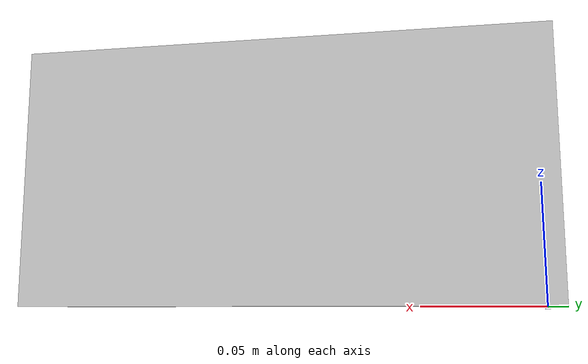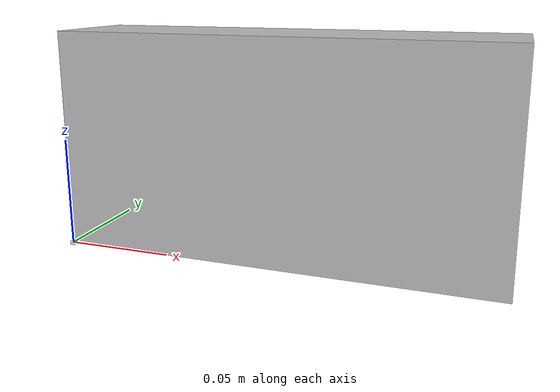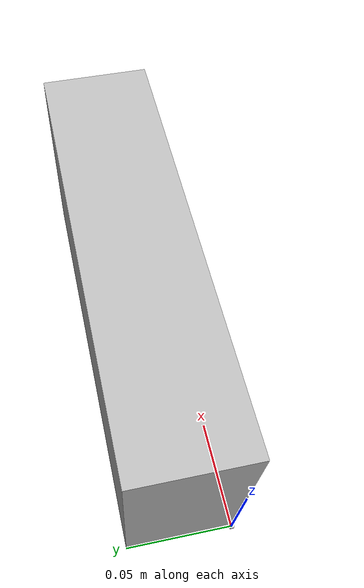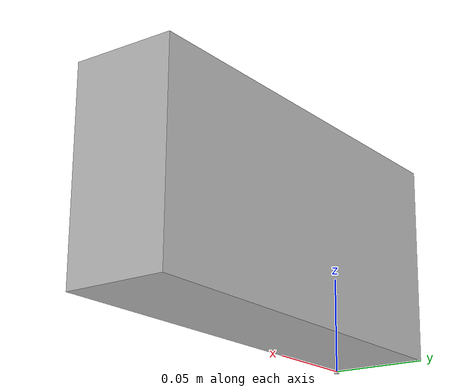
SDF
<?xml version="1.0"?>
<sdf version="1.9">
  <model name="MedKit">
    <static>false</static>
    <link name="link">
      <inertial>
        <mass>0.5</mass>
        <inertia>
          <ixx>0.001</ixx><ixy>0</ixy><ixz>0</ixz>
          <iyy>0.001</iyy><iyz>0</iyz><izz>0.001</izz>
        </inertia>
      </inertial>

      <collision name="collision">
        <geometry>
          <mesh>
            <uri>model://MedKit/meshes/MedKit.dae</uri>
            <scale>0.001 0.001 0.001</scale>
          </mesh>
        </geometry>
      </collision>

      <visual name="visual">
        <geometry>
          <mesh>
            <uri>model://MedKit/meshes/MedKit.dae</uri>
            <scale>0.001 0.001 0.001</scale>
          </mesh>
        </geometry>
      </visual>
    </link>
  </model>
</sdf>
